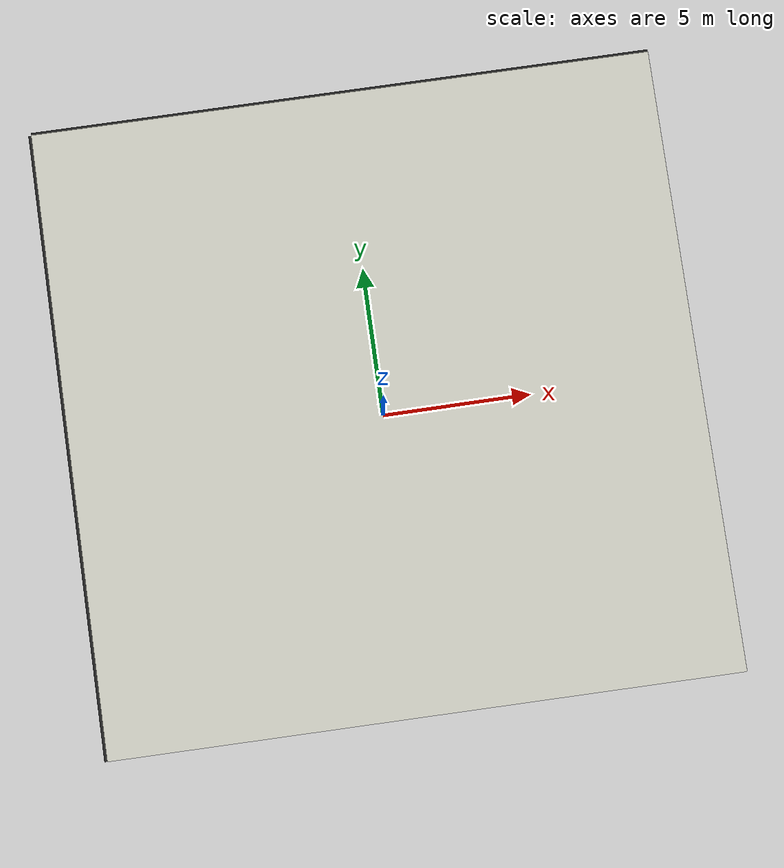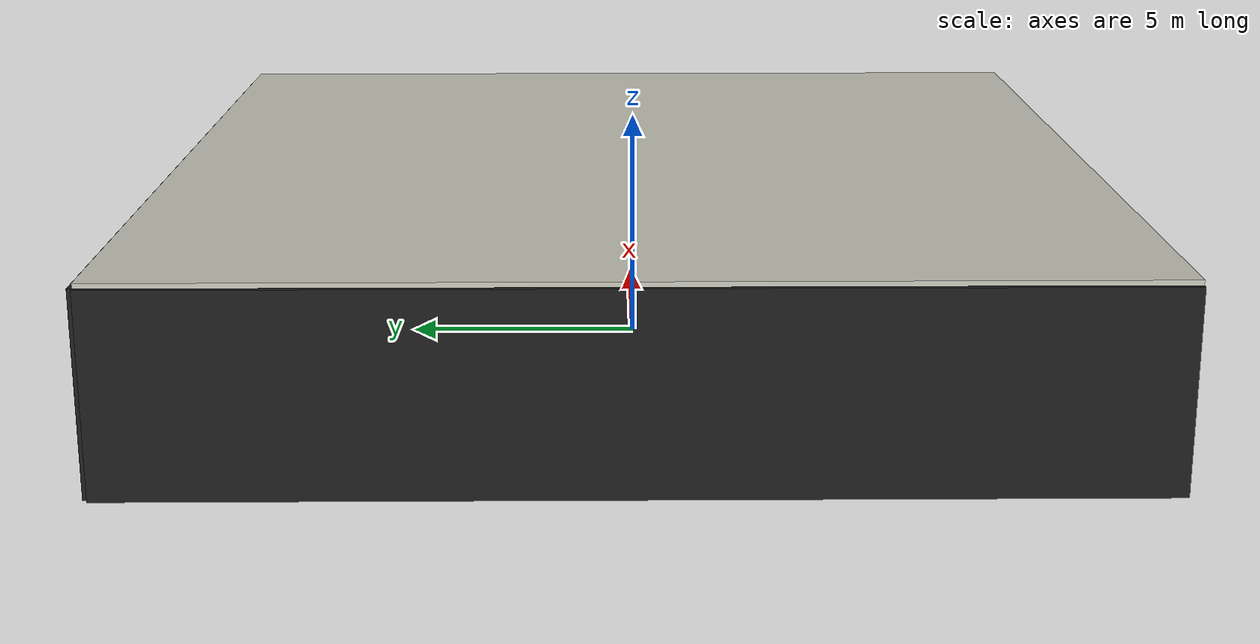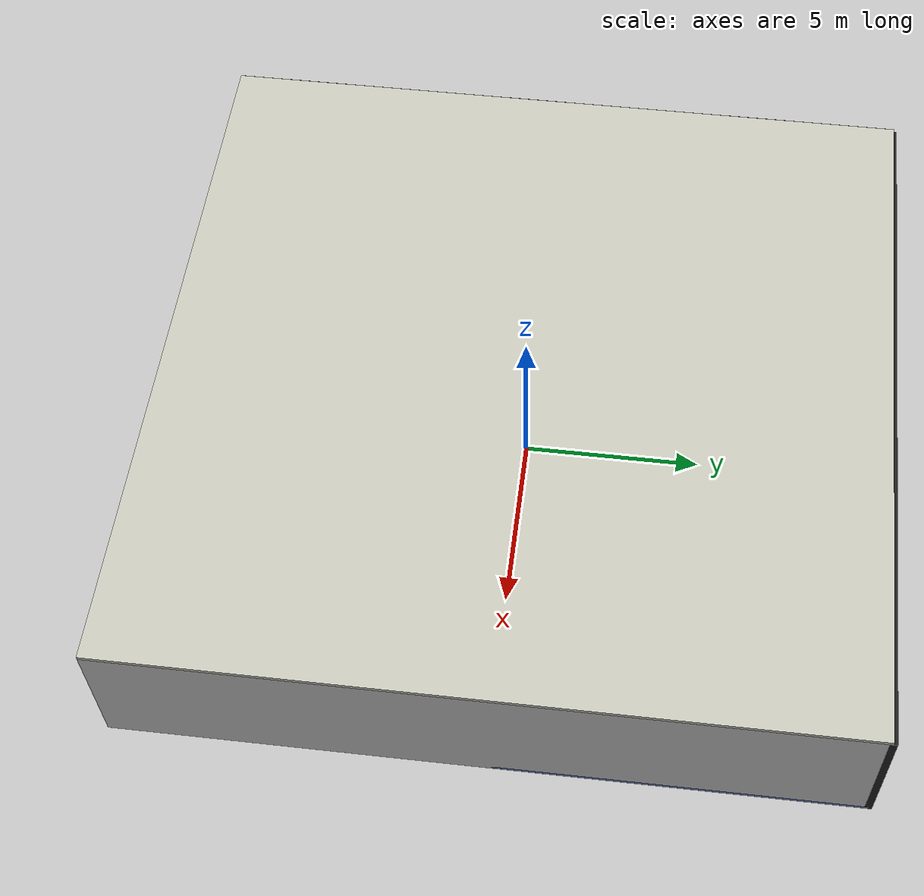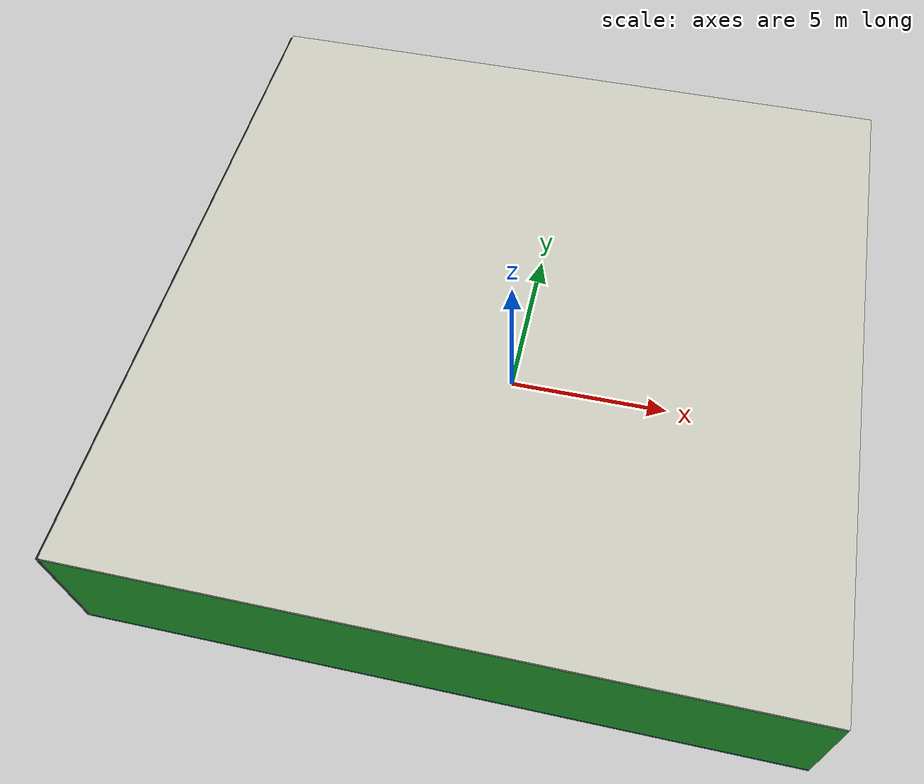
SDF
<sdf version="1.4">
 <world name="default">
  <physics type="ode">
   <max_step_size>0.001</max_step_size>
   <real_time_factor>1</real_time_factor>
   <real_time_update_rate>1000</real_time_update_rate>
   <gravity>0 0 -9.8</gravity>
  </physics>
  <scene><ambient>0.4 0.4 0.4 1</ambient><background>0.7 0.7 0.7 1</background><shadows>1</shadows></scene>
  <model name="Surrounding">
   <static>1</static>
   <link name="Ceiling">
    <collision name="Ceiling_Collision"><geometry><box><size>20 20 0.1</size></box></geometry></collision>
    <visual name="Ceiling_Visual">
     <geometry><box><size>20 20 0.1</size></box></geometry>
     <material>
      <script><uri>file://media/materials/scripts/gazebo.material</uri><name>Gazebo/PaintedWall</name></script>
     </material>
    </visual>
    <pose>0 0 4.05 0 0 0</pose>
   </link>
   <link name="Wall_South">
    <collision name="Wall_South_Collision">
     <geometry><box><size>20 0 4</size></box></geometry>
     <pose>0 0 2 0 -0 0</pose>
    </collision>
    <visual name="Wall_South_Visual">
     <pose>0 0 2 0 -0 0</pose>
     <geometry><box><size>20 0 4</size></box></geometry>
     <material>
      <script><uri>file://media/materials/scripts/gazebo.material</uri><name>Gazebo/GreenGlow</name></script>
     </material>
    </visual>
    <velocity_decay><linear>0</linear><angular>0</angular></velocity_decay>
    <pose>0 -10 0 0 -0 0</pose>
   </link>
   <link name="Wall_East">
    <collision name="Wall_21_Collision">
     <geometry><box><size>20 0 4</size></box></geometry>
     <pose>0 0 2 0 -0 0</pose>
    </collision>
    <visual name="Wall_21_Visual">
     <pose>0 0 2 0 -0 0</pose>
     <geometry><box><size>20 0 4</size></box></geometry>
     <material>
      <script><uri>file://media/materials/scripts/gazebo.material</uri><name>Gazebo/LightOff</name></script>
     </material>
    </visual>
    <velocity_decay><linear>0</linear><angular>0</angular></velocity_decay>
    <pose>10 0 0 0 -0 1.5708</pose>
   </link>
   <link name="Wall_North">
    <collision name="Wall_22_Collision">
     <geometry><box><size>20 0.2 4</size></box></geometry>
     <pose>0 0 2 0 -0 0</pose>
    </collision>
    <visual name="Wall_22_Visual">
     <pose>0 0 2 0 -0 0</pose>
     <geometry><box><size>20 0.2 4</size></box></geometry>
     <material>
      <script><uri>file://media/materials/scripts/gazebo.material</uri><name>Gazebo/FlatBlack</name></script>
     </material>
    </visual>
    <velocity_decay><linear>0</linear><angular>0</angular></velocity_decay>
    <pose>0 10 0 0 -0 0</pose>
   </link>
   <link name="Wall_West">
    <collision name="Wall_23_Collision">
     <geometry><box><size>20 0.2 4</size></box></geometry>
     <pose>0 0 2 0 -0 0</pose>
    </collision>
    <visual name="Wall_23_Visual">
     <pose>0 0 2 0 -0 0</pose>
     <geometry><box><size>20 0.2 4</size></box></geometry>
     <material>
      <script><uri>file://media/materials/scripts/gazebo.material</uri><name>Gazebo/Black</name></script>
     </material>
    </visual>
    <velocity_decay><linear>0</linear><angular>0</angular></velocity_decay>
    <pose>-10 0 0 0 0 -1.5708</pose>
   </link>
   <link name="Ground_link">
    <collision name="collision">
     <pose>0 0 .05 0 -0 0</pose>
     <geometry><box><size>20 20 0.1</size></box></geometry>
    </collision>
    <visual name="visual">
     <pose>0 0 .05 0 -0 0</pose>
     <geometry><box><size>20 20 0.1</size></box></geometry>
     <material>
      <script><uri>file://media/materials/scripts/gazebo.material</uri><name>Gazebo/BlueTransparent</name></script>
     </material>
    </visual>
   </link>
   <static>1</static>
  </model>
  <spherical_coordinates>
   <surface_model>EARTH_WGS84</surface_model>
   <latitude_deg>0</latitude_deg>
   <longitude_deg>0</longitude_deg>
   <elevation>0</elevation>
   <heading_deg>0</heading_deg>
  </spherical_coordinates>
  <light name="lightball_0" type="diffuse">
   <diffuse>0.8 0.8 0.8 1</diffuse>
   <specular>0.2 0.2 0.2 1</specular>
   <attenuation>
    <range>100</range>
    <constant>0.7</constant>
    <linear>0.01</linear>
    <quadratic>0.001</quadratic>
   </attenuation>
   <direction>-0.5 0.1 -0.9</direction>
   <pose>-9.90556428524 -2.22226839581 3.84408002209 0 0 0</pose>
  </light>
  <light name="lightball_1" type="diffuse">
   <diffuse>0.8 0.8 0.8 1</diffuse>
   <specular>0.2 0.2 0.2 1</specular>
   <attenuation>
    <range>100</range>
    <constant>0.7</constant>
    <linear>0.01</linear>
    <quadratic>0.001</quadratic>
   </attenuation>
   <direction>-0.5 0.1 -0.9</direction>
   <pose>0.188588444138 2.90068156802 1.91280380966 0 0 0</pose>
  </light>
  <light name="lightball_2" type="diffuse">
   <diffuse>0.8 0.8 0.8 1</diffuse>
   <specular>0.2 0.2 0.2 1</specular>
   <attenuation>
    <range>100</range>
    <constant>0.7</constant>
    <linear>0.01</linear>
    <quadratic>0.001</quadratic>
   </attenuation>
   <direction>-0.5 0.1 -0.9</direction>
   <pose>8.72753780897 -2.25903519188 0.844644707276 0 0 0</pose>
  </light>
  <light name="lightball_3" type="diffuse">
   <diffuse>0.8 0.8 0.8 1</diffuse>
   <specular>0.2 0.2 0.2 1</specular>
   <attenuation>
    <range>100</range>
    <constant>0.7</constant>
    <linear>0.01</linear>
    <quadratic>0.001</quadratic>
   </attenuation>
   <direction>-0.5 0.1 -0.9</direction>
   <pose>-3.50180422342 -6.74548882176 0.801960489753 0 0 0</pose>
  </light>
  <light name="lightball_4" type="diffuse">
   <diffuse>0.8 0.8 0.8 1</diffuse>
   <specular>0.2 0.2 0.2 1</specular>
   <attenuation>
    <range>100</range>
    <constant>0.7</constant>
    <linear>0.01</linear>
    <quadratic>0.001</quadratic>
   </attenuation>
   <direction>-0.5 0.1 -0.9</direction>
   <pose>6.62803191448 -7.8066861278 1.86911205978 0 0 0</pose>
  </light>
  <light name="lightball_5" type="diffuse">
   <diffuse>0.8 0.8 0.8 1</diffuse>
   <specular>0.2 0.2 0.2 1</specular>
   <attenuation>
    <range>100</range>
    <constant>0.7</constant>
    <linear>0.01</linear>
    <quadratic>0.001</quadratic>
   </attenuation>
   <direction>-0.5 0.1 -0.9</direction>
   <pose>-2.47315285953 -0.586445725943 1.11777442642 0 0 0</pose>
  </light>
  <light name="lightball_6" type="diffuse">
   <diffuse>0.8 0.8 0.8 1</diffuse>
   <specular>0.2 0.2 0.2 1</specular>
   <attenuation>
    <range>100</range>
    <constant>0.7</constant>
    <linear>0.01</linear>
    <quadratic>0.001</quadratic>
   </attenuation>
   <direction>-0.5 0.1 -0.9</direction>
   <pose>-8.92906884664 -3.85371516551 2.97882063711 0 0 0</pose>
  </light>
  <light name="lightball_7" type="diffuse">
   <diffuse>0.8 0.8 0.8 1</diffuse>
   <specular>0.2 0.2 0.2 1</specular>
   <attenuation>
    <range>100</range>
    <constant>0.7</constant>
    <linear>0.01</linear>
    <quadratic>0.001</quadratic>
   </attenuation>
   <direction>-0.5 0.1 -0.9</direction>
   <pose>3.10165962134 -6.88507754278 2.40056258146 0 0 0</pose>
  </light>
  <light name="lightball_8" type="diffuse">
   <diffuse>0.8 0.8 0.8 1</diffuse>
   <specular>0.2 0.2 0.2 1</specular>
   <attenuation>
    <range>100</range>
    <constant>0.7</constant>
    <linear>0.01</linear>
    <quadratic>0.001</quadratic>
   </attenuation>
   <direction>-0.5 0.1 -0.9</direction>
   <pose>-5.10552175172 1.10651287654 2.21409748005 0 0 0</pose>
  </light>
  <light name="lightball_9" type="diffuse">
   <diffuse>0.8 0.8 0.8 1</diffuse>
   <specular>0.2 0.2 0.2 1</specular>
   <attenuation>
    <range>100</range>
    <constant>0.7</constant>
    <linear>0.01</linear>
    <quadratic>0.001</quadratic>
   </attenuation>
   <direction>-0.5 0.1 -0.9</direction>
   <pose>-5.62600301784 -9.86879689803 3.65742572449 0 0 0</pose>
  </light>
  <light name="lightball_10" type="diffuse">
   <diffuse>0.8 0.8 0.8 1</diffuse>
   <specular>0.2 0.2 0.2 1</specular>
   <attenuation>
    <range>100</range>
    <constant>0.7</constant>
    <linear>0.01</linear>
    <quadratic>0.001</quadratic>
   </attenuation>
   <direction>-0.5 0.1 -0.9</direction>
   <pose>3.6397092379 9.16872106324 3.59168431655 0 0 0</pose>
  </light>
  <light name="lightball_11" type="diffuse">
   <diffuse>0.8 0.8 0.8 1</diffuse>
   <specular>0.2 0.2 0.2 1</specular>
   <attenuation>
    <range>100</range>
    <constant>0.7</constant>
    <linear>0.01</linear>
    <quadratic>0.001</quadratic>
   </attenuation>
   <direction>-0.5 0.1 -0.9</direction>
   <pose>-5.70484363053 1.01475143076 3.24646522493 0 0 0</pose>
  </light>
  <light name="lightball_12" type="diffuse">
   <diffuse>0.8 0.8 0.8 1</diffuse>
   <specular>0.2 0.2 0.2 1</specular>
   <attenuation>
    <range>100</range>
    <constant>0.7</constant>
    <linear>0.01</linear>
    <quadratic>0.001</quadratic>
   </attenuation>
   <direction>-0.5 0.1 -0.9</direction>
   <pose>9.86146357082 -9.04073676922 3.72403185354 0 0 0</pose>
  </light>
  <light name="lightball_13" type="diffuse">
   <diffuse>0.8 0.8 0.8 1</diffuse>
   <specular>0.2 0.2 0.2 1</specular>
   <attenuation>
    <range>100</range>
    <constant>0.7</constant>
    <linear>0.01</linear>
    <quadratic>0.001</quadratic>
   </attenuation>
   <direction>-0.5 0.1 -0.9</direction>
   <pose>1.97540670703 2.37256725134 2.96967963431 0 0 0</pose>
  </light>
  <include><uri>model://table</uri><pose>-4.84567675666 -4.80739881822 0 0 0 1.58751822163</pose></include>
  <include><uri>model://cabinet</uri><pose>-5.24438426562 6.50161280353 0 0 0 2.7857945896</pose></include>
  <include><uri>model://cabinet</uri><pose>-2.23266841642 -4.66095651116 0 0 0 1.75768566371</pose></include>
  <include><uri>model://table</uri><pose>-0.379126883842 8.29725507919 0 0 0 2.23293858741</pose></include>
  <include><uri>model://table</uri><pose>1.79106465459 -1.94589163843 0 0 0 0.830956711264</pose></include>
  <include><uri>model://cabinet</uri><pose>1.11096737681 3.93369645991 0 0 0 2.92721120262</pose></include>
  <include>
   <uri>model://textured_shapes</uri>
   <pose>4.55985367177 -2.05326130023 0 0 0 0.916830789544</pose>
  </include>
 </world>
</sdf>

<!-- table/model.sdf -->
<sdf version="1.5">
  <model name="table">
    <static>true</static>
    <link name="link">
      <collision name="surface">
        <pose>0 0 1.0 0 0 0</pose>
        <geometry>
          <box>
            <size>1.5 0.8 0.03</size>
          </box>
        </geometry>
        <surface>
          <friction>
            <ode>
              <mu>0.6</mu>
              <mu2>0.6</mu2>
            </ode>
          </friction>
        </surface>
      </collision>
      <visual name="visual1">
        <pose>0 0 1.0 0 0 0</pose>
        <geometry>
          <box>
            <size>1.5 0.8 0.03</size>
          </box>
        </geometry>
        <material>
          <script>
            <uri>model://media/materials/scripts/gazebo.material</uri>
            <name>Gazebo/Wood</name>
          </script>
        </material>
      </visual>
      <collision name="front_left_leg">
        <pose>0.68 0.38 0.5 0 0 0</pose>
        <geometry>
          <cylinder>
            <radius>0.02</radius>
            <length>1.0</length>
          </cylinder>
        </geometry>
      </collision>
      <visual name="front_left_leg">
        <pose>0.68 0.38 0.5 0 0 0</pose>
        <geometry>
          <cylinder>
            <radius>0.02</radius>
            <length>1.0</length>
          </cylinder>
        </geometry>
        <material>
          <script>
            <uri>model://media/materials/scripts/gazebo.material</uri>
            <name>Gazebo/Grey</name>
          </script>
        </material>
      </visual>
      <collision name="front_right_leg">
        <pose>0.68 -0.38 0.5 0 0 0</pose>
        <geometry>
          <cylinder>
            <radius>0.02</radius>
            <length>1.0</length>
          </cylinder>
        </geometry>
      </collision>
      <visual name="front_right_leg">
        <pose>0.68 -0.38 0.5 0 0 0</pose>
        <geometry>
          <cylinder>
            <radius>0.02</radius>
            <length>1.0</length>
          </cylinder>
        </geometry>
        <material>
          <script>
            <uri>model://media/materials/scripts/gazebo.material</uri>
            <name>Gazebo/Grey</name>
          </script>
        </material>
      </visual>
      <collision name="back_right_leg">
        <pose>-0.68 -0.38 0.5 0 0 0</pose>
        <geometry>
          <cylinder>
            <radius>0.02</radius>
            <length>1.0</length>
          </cylinder>
        </geometry>
      </collision>
      <visual name="back_right_leg">
        <pose>-0.68 -0.38 0.5 0 0 0</pose>
        <geometry>
          <cylinder>
            <radius>0.02</radius>
            <length>1.0</length>
          </cylinder>
        </geometry>
        <material>
          <script>
            <uri>model://media/materials/scripts/gazebo.material</uri>
            <name>Gazebo/Grey</name>
          </script>
        </material>
      </visual>
      <collision name="back_left_leg">
        <pose>-0.68 0.38 0.5 0 0 0</pose>
        <geometry>
          <cylinder>
            <radius>0.02</radius>
            <length>1.0</length>
          </cylinder>
        </geometry>
      </collision>
      <visual name="back_left_leg">
        <pose>-0.68 0.38 0.5 0 0 0</pose>
        <geometry>
          <cylinder>
            <radius>0.02</radius>
            <length>1.0</length>
          </cylinder>
        </geometry>
        <material>
          <script>
            <uri>model://media/materials/scripts/gazebo.material</uri>
            <name>Gazebo/Grey</name>
          </script>
        </material>
      </visual>
    </link>
  </model>
</sdf>

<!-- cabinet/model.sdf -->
<sdf version="1.5">
  <model name="cabinet">
    <static>true</static>
    <link name="cabinet_bottom_plate">
      <inertial>
        <pose>0 0 -1 0 0 0</pose>
        <inertia>
          <ixx>2.050000</ixx>
          <ixy>0</ixy>
          <ixz>0</ixz>
          <iyy>2.050000</iyy>
          <iyz>0</iyz>
          <izz>2.050000</izz>
        </inertia>
        <mass>25.000000</mass>
      </inertial>
      <collision name="cabinet_bottom_plate_geom">
        <pose>0 0 0.010000 0 0 0</pose>
        <geometry>
          <box>
            <size>0.450000 0.450000 0.020000</size>
          </box>
        </geometry>
      </collision>
      <visual name="cabinet_bottom_plate_geom_visual">
        <pose>0 0 0.010000 0 0 0</pose>
        <geometry>
          <box>
            <size>0.450000 0.450000 0.020000</size>
          </box>
        </geometry>
        <material>
          <script>
            <uri>model://media/materials/scripts/gazebo.material</uri>
            <name>Gazebo/Wood</name>
          </script>
        </material>
      </visual>
      <collision name="cabinet_bottom_plate_geom_cabinet_back_plate">
        <pose>0.235000 0 0.510000 0 0 0</pose>
        <geometry>
          <box>
            <size>0.020000 0.450000 1.020000</size>
          </box>
        </geometry>
      </collision>
      <visual name="cabinet_bottom_plate_geom_cabinet_back_plate_visual">
        <pose>0.235000 0 0.510000 0 0 0</pose>
        <geometry>
          <box>
            <size>0.020000 0.450000 1.020000</size>
          </box>
        </geometry>
        <material>
          <script>
            <uri>model://media/materials/scripts/gazebo.material</uri>
            <name>Gazebo/Wood</name>
          </script>
        </material>
      </visual>
      <collision name="cabinet_bottom_plate_geom_cabinet_left_plate">
        <pose>0 0.235000 0.510000 0 0 0</pose>
        <geometry>
          <box>
            <size>0.450000 0.020000 1.020000</size>
          </box>
        </geometry>
      </collision>
      <visual name="cabinet_bottom_plate_geom_cabinet_left_plate_visual">
        <pose>0 0.235000 0.510000 0 0 0</pose>
        <geometry>
          <box>
            <size>0.450000 0.020000 1.020000</size>
          </box>
        </geometry>
        <material>
          <script>
            <uri>model://media/materials/scripts/gazebo.material</uri>
            <name>Gazebo/Wood</name>
          </script>
        </material>
      </visual>
      <collision name="cabinet_bottom_plate_geom_cabinet_middle_plate">
        <pose>0 0 0.510000 0 0 0</pose>
        <geometry>
          <box>
            <size>0.450000 0.450000 0.020000</size>
          </box>
        </geometry>
      </collision>
      <visual name="cabinet_bottom_plate_geom_cabinet_middle_plate_visual">
        <pose>0 0 0.510000 0 0 0</pose>
        <geometry>
          <box>
            <size>0.450000 0.450000 0.020000</size>
          </box>
        </geometry>
        <material>
          <script>
            <uri>model://media/materials/scripts/gazebo.material</uri>
            <name>Gazebo/Wood</name>
          </script>
        </material>
      </visual>
      <collision name="cabinet_bottom_plate_geom_cabinet_right_plate">
        <pose>0 -0.235000 0.510000 0 0 0</pose>
        <geometry>
          <box>
            <size>0.450000 0.020000 1.020000</size>
          </box>
        </geometry>
      </collision>
      <visual name="cabinet_bottom_plate_geom_cabinet_right_plate_visual">
        <pose>0 -0.235000 0.510000 0 0 0</pose>
        <geometry>
          <box>
            <size>0.450000 0.020000 1.020000</size>
          </box>
        </geometry>
        <material>
          <script>
            <uri>model://media/materials/scripts/gazebo.material</uri>
            <name>Gazebo/Wood</name>
          </script>
        </material>
      </visual>
      <collision name="cabinet_bottom_plate_geom_cabinet_top_plate">
        <pose>0 0 1.010000 0 0 0</pose>
        <geometry>
          <box>
            <size>0.450000 0.450000 0.020000</size>
          </box>
        </geometry>
      </collision>
      <visual name="cabinet_bottom_plate_geom_cabinet_top_plate_visual">
        <pose>0 0 1.010000 0 0 0</pose>
        <geometry>
          <box>
            <size>0.450000 0.450000 0.020000</size>
          </box>
        </geometry>
        <material>
          <script>
            <uri>model://media/materials/scripts/gazebo.material</uri>
            <name>Gazebo/Wood</name>
          </script>
        </material>
      </visual>
    </link>
  </model>
</sdf>

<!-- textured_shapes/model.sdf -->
<sdf version="1.6">
  <model name="textured_shapes">
    <pose>0 0 0.5 0 0 0</pose>
    <link name="box">
      <pose>0 -1.5 0 0 0 0</pose>
      <collision name="collision">
        <geometry>
          <box>
            <size>1 1 1</size>
          </box>
        </geometry>
      </collision>
      <visual name="visual">
        <geometry>
          <box>
            <size>1 1 1</size>
          </box>
        </geometry>
        <material>
          <script>
            <uri>model://../model_source/models/textured_shapes/materials/scripts</uri>
            <uri>model://../model_source/models/textured_shapes/materials/textures</uri>
            <name>TexturedShape/Squares</name>
          </script>
        </material>
      </visual>
    </link>
    <link name="sphere">
      <collision name="collision">
        <geometry>
          <sphere>
            <radius>0.5</radius>
          </sphere>
        </geometry>
      </collision>
      <visual name="visual">
        <geometry>
          <sphere>
            <radius>0.5</radius>
          </sphere>
        </geometry>
        <material>
          <script>
            <uri>model://../model_source/models/textured_shapes/materials/scripts</uri>
            <uri>model://../model_source/models/textured_shapes/materials/textures</uri>
            <name>TexturedShape/Squares</name>
          </script>
        </material>
      </visual>
    </link>
    <link name="cylinder">
      <pose>0 1.5 0 0 0 0</pose>
      <collision name="collision">
        <geometry>
          <cylinder>
            <radius>0.5</radius>
            <length>1</length>
          </cylinder>
        </geometry>
      </collision>
      <visual name="visual">
        <geometry>
          <cylinder>
            <radius>0.5</radius>
            <length>1</length>
          </cylinder>
        </geometry>
        <material>
          <script>
            <uri>model://../model_source/models/textured_shapes/materials/scripts</uri>
            <uri>model://../model_source/models/textured_shapes/materials/textures</uri>
            <name>TexturedShape/Squares</name>
          </script>
        </material>
      </visual>
    </link>
  </model>
</sdf>
